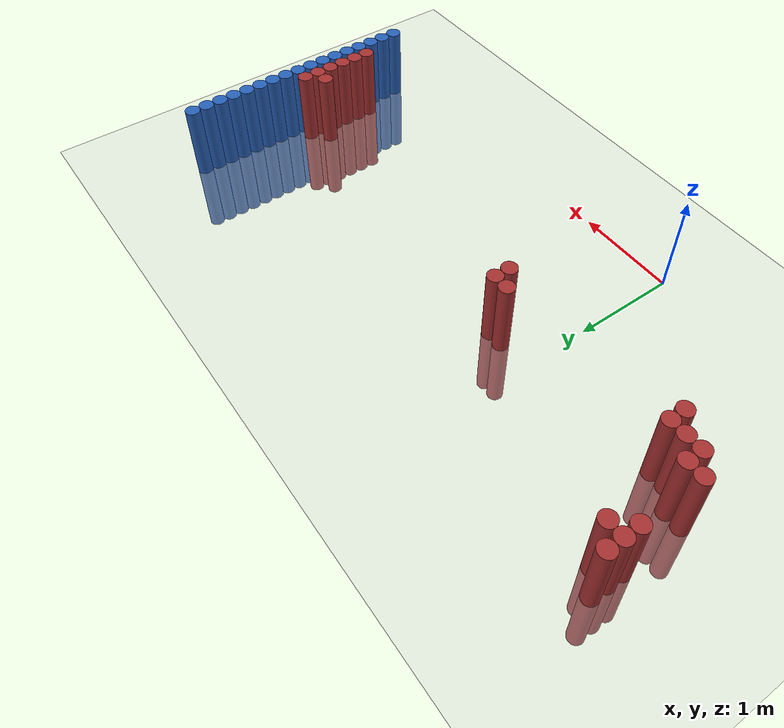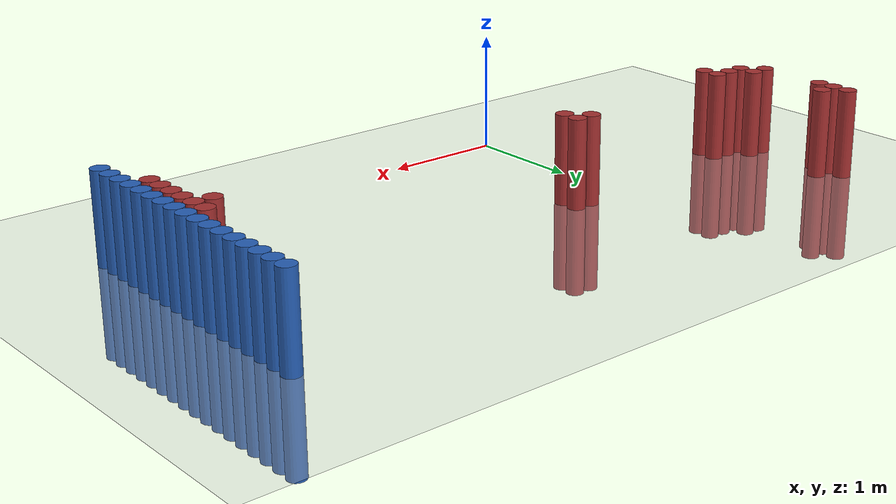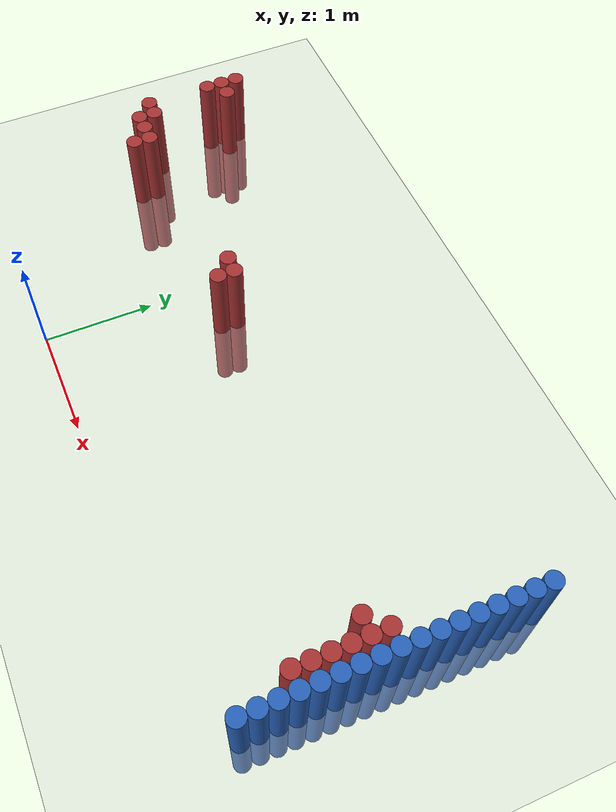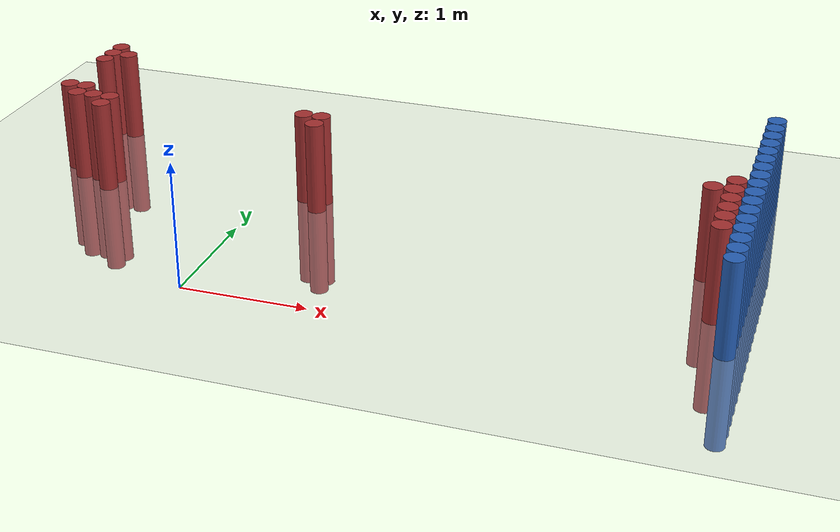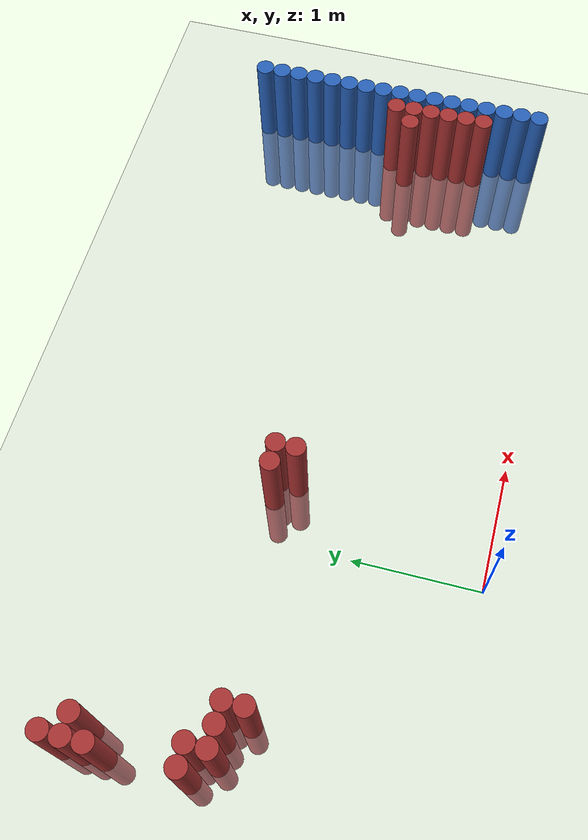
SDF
<sdf version="1.6">
 <world name="default">
  <model name="ground_plane">
   <static>1</static>
   <link name="link">
    <collision name="collision">
     <geometry><plane><normal>0 0 1</normal><size>100 100</size></plane></geometry>
     <surface><friction><ode><mu>100</mu><mu2>50</mu2></ode></friction></surface>
    </collision>
    <visual name="visual">
     <cast_shadows>0</cast_shadows>
     <geometry><plane><normal>0 0 1</normal><size>100 100</size></plane></geometry>
     <material>
      <script><uri>file://media/materials/scripts/gazebo.material</uri><name>Gazebo/Grey</name></script>
     </material>
    </visual>
   </link>
  </model>
  <model name="unit_cylinder_118">
   <static>1</static>
   <pose>3.925000 0.325000 0.000000 0.000000 0.000000 0.000000</pose>
   <link name="link">
    <inertial>
     <mass>1</mass>
     <inertia><ixx>0.145833</ixx><ixy>0</ixy><ixz>0</ixz><iyy>0.145833</iyy><iyz>0</iyz><izz>0.125</izz></inertia>
    </inertial>
    <collision name="collision">
     <geometry><cylinder><radius>0.075000</radius><length>1.5</length></cylinder></geometry>
    </collision>
    <visual name="visual">
     <geometry><cylinder><radius>0.075000</radius><length>1.5</length></cylinder></geometry>
     <material>
      <ambient>0.152000 0.379000 0.720000 1</ambient>
      <diffuse>0.152000 0.379000 0.720000 1</diffuse>
     </material>
     <material>
      <script><name>Gazebo/Grey</name><uri>file://media/materials/scripts/gazebo.material</uri></script>
     </material>
    </visual>
   </link>
  </model>
  <model name="unit_cylinder_120">
   <static>1</static>
   <pose>3.925000 0.475000 0.000000 0.000000 0.000000 0.000000</pose>
   <link name="link">
    <inertial>
     <mass>1</mass>
     <inertia><ixx>0.145833</ixx><ixy>0</ixy><ixz>0</ixz><iyy>0.145833</iyy><iyz>0</iyz><izz>0.125</izz></inertia>
    </inertial>
    <collision name="collision">
     <geometry><cylinder><radius>0.075000</radius><length>1.5</length></cylinder></geometry>
    </collision>
    <visual name="visual">
     <geometry><cylinder><radius>0.075000</radius><length>1.5</length></cylinder></geometry>
     <material>
      <ambient>0.152000 0.379000 0.720000 1</ambient>
      <diffuse>0.152000 0.379000 0.720000 1</diffuse>
     </material>
     <material>
      <script><name>Gazebo/Grey</name><uri>file://media/materials/scripts/gazebo.material</uri></script>
     </material>
    </visual>
   </link>
  </model>
  <model name="unit_cylinder_122">
   <static>1</static>
   <pose>3.925000 0.625000 0.000000 0.000000 0.000000 0.000000</pose>
   <link name="link">
    <inertial>
     <mass>1</mass>
     <inertia><ixx>0.145833</ixx><ixy>0</ixy><ixz>0</ixz><iyy>0.145833</iyy><iyz>0</iyz><izz>0.125</izz></inertia>
    </inertial>
    <collision name="collision">
     <geometry><cylinder><radius>0.075000</radius><length>1.5</length></cylinder></geometry>
    </collision>
    <visual name="visual">
     <geometry><cylinder><radius>0.075000</radius><length>1.5</length></cylinder></geometry>
     <material>
      <ambient>0.152000 0.379000 0.720000 1</ambient>
      <diffuse>0.152000 0.379000 0.720000 1</diffuse>
     </material>
     <material>
      <script><name>Gazebo/Grey</name><uri>file://media/materials/scripts/gazebo.material</uri></script>
     </material>
    </visual>
   </link>
  </model>
  <model name="unit_cylinder_124">
   <static>1</static>
   <pose>3.925000 0.775000 0.000000 0.000000 0.000000 0.000000</pose>
   <link name="link">
    <inertial>
     <mass>1</mass>
     <inertia><ixx>0.145833</ixx><ixy>0</ixy><ixz>0</ixz><iyy>0.145833</iyy><iyz>0</iyz><izz>0.125</izz></inertia>
    </inertial>
    <collision name="collision">
     <geometry><cylinder><radius>0.075000</radius><length>1.5</length></cylinder></geometry>
    </collision>
    <visual name="visual">
     <geometry><cylinder><radius>0.075000</radius><length>1.5</length></cylinder></geometry>
     <material>
      <ambient>0.152000 0.379000 0.720000 1</ambient>
      <diffuse>0.152000 0.379000 0.720000 1</diffuse>
     </material>
     <material>
      <script><name>Gazebo/Grey</name><uri>file://media/materials/scripts/gazebo.material</uri></script>
     </material>
    </visual>
   </link>
  </model>
  <model name="unit_cylinder_126">
   <static>1</static>
   <pose>3.925000 0.925000 0.000000 0.000000 0.000000 0.000000</pose>
   <link name="link">
    <inertial>
     <mass>1</mass>
     <inertia><ixx>0.145833</ixx><ixy>0</ixy><ixz>0</ixz><iyy>0.145833</iyy><iyz>0</iyz><izz>0.125</izz></inertia>
    </inertial>
    <collision name="collision">
     <geometry><cylinder><radius>0.075000</radius><length>1.5</length></cylinder></geometry>
    </collision>
    <visual name="visual">
     <geometry><cylinder><radius>0.075000</radius><length>1.5</length></cylinder></geometry>
     <material>
      <ambient>0.152000 0.379000 0.720000 1</ambient>
      <diffuse>0.152000 0.379000 0.720000 1</diffuse>
     </material>
     <material>
      <script><name>Gazebo/Grey</name><uri>file://media/materials/scripts/gazebo.material</uri></script>
     </material>
    </visual>
   </link>
  </model>
  <model name="unit_cylinder_128">
   <static>1</static>
   <pose>3.925000 1.075000 0.000000 0.000000 0.000000 0.000000</pose>
   <link name="link">
    <inertial>
     <mass>1</mass>
     <inertia><ixx>0.145833</ixx><ixy>0</ixy><ixz>0</ixz><iyy>0.145833</iyy><iyz>0</iyz><izz>0.125</izz></inertia>
    </inertial>
    <collision name="collision">
     <geometry><cylinder><radius>0.075000</radius><length>1.5</length></cylinder></geometry>
    </collision>
    <visual name="visual">
     <geometry><cylinder><radius>0.075000</radius><length>1.5</length></cylinder></geometry>
     <material>
      <ambient>0.152000 0.379000 0.720000 1</ambient>
      <diffuse>0.152000 0.379000 0.720000 1</diffuse>
     </material>
     <material>
      <script><name>Gazebo/Grey</name><uri>file://media/materials/scripts/gazebo.material</uri></script>
     </material>
    </visual>
   </link>
  </model>
  <model name="unit_cylinder_130">
   <static>1</static>
   <pose>3.925000 1.225000 0.000000 0.000000 0.000000 0.000000</pose>
   <link name="link">
    <inertial>
     <mass>1</mass>
     <inertia><ixx>0.145833</ixx><ixy>0</ixy><ixz>0</ixz><iyy>0.145833</iyy><iyz>0</iyz><izz>0.125</izz></inertia>
    </inertial>
    <collision name="collision">
     <geometry><cylinder><radius>0.075000</radius><length>1.5</length></cylinder></geometry>
    </collision>
    <visual name="visual">
     <geometry><cylinder><radius>0.075000</radius><length>1.5</length></cylinder></geometry>
     <material>
      <ambient>0.152000 0.379000 0.720000 1</ambient>
      <diffuse>0.152000 0.379000 0.720000 1</diffuse>
     </material>
     <material>
      <script><name>Gazebo/Grey</name><uri>file://media/materials/scripts/gazebo.material</uri></script>
     </material>
    </visual>
   </link>
  </model>
  <model name="unit_cylinder_132">
   <static>1</static>
   <pose>3.925000 1.375000 0.000000 0.000000 0.000000 0.000000</pose>
   <link name="link">
    <inertial>
     <mass>1</mass>
     <inertia><ixx>0.145833</ixx><ixy>0</ixy><ixz>0</ixz><iyy>0.145833</iyy><iyz>0</iyz><izz>0.125</izz></inertia>
    </inertial>
    <collision name="collision">
     <geometry><cylinder><radius>0.075000</radius><length>1.5</length></cylinder></geometry>
    </collision>
    <visual name="visual">
     <geometry><cylinder><radius>0.075000</radius><length>1.5</length></cylinder></geometry>
     <material>
      <ambient>0.152000 0.379000 0.720000 1</ambient>
      <diffuse>0.152000 0.379000 0.720000 1</diffuse>
     </material>
     <material>
      <script><name>Gazebo/Grey</name><uri>file://media/materials/scripts/gazebo.material</uri></script>
     </material>
    </visual>
   </link>
  </model>
  <model name="unit_cylinder_134">
   <static>1</static>
   <pose>3.925000 1.525000 0.000000 0.000000 0.000000 0.000000</pose>
   <link name="link">
    <inertial>
     <mass>1</mass>
     <inertia><ixx>0.145833</ixx><ixy>0</ixy><ixz>0</ixz><iyy>0.145833</iyy><iyz>0</iyz><izz>0.125</izz></inertia>
    </inertial>
    <collision name="collision">
     <geometry><cylinder><radius>0.075000</radius><length>1.5</length></cylinder></geometry>
    </collision>
    <visual name="visual">
     <geometry><cylinder><radius>0.075000</radius><length>1.5</length></cylinder></geometry>
     <material>
      <ambient>0.152000 0.379000 0.720000 1</ambient>
      <diffuse>0.152000 0.379000 0.720000 1</diffuse>
     </material>
     <material>
      <script><name>Gazebo/Grey</name><uri>file://media/materials/scripts/gazebo.material</uri></script>
     </material>
    </visual>
   </link>
  </model>
  <model name="unit_cylinder_136">
   <static>1</static>
   <pose>3.925000 1.675000 0.000000 0.000000 0.000000 0.000000</pose>
   <link name="link">
    <inertial>
     <mass>1</mass>
     <inertia><ixx>0.145833</ixx><ixy>0</ixy><ixz>0</ixz><iyy>0.145833</iyy><iyz>0</iyz><izz>0.125</izz></inertia>
    </inertial>
    <collision name="collision">
     <geometry><cylinder><radius>0.075000</radius><length>1.5</length></cylinder></geometry>
    </collision>
    <visual name="visual">
     <geometry><cylinder><radius>0.075000</radius><length>1.5</length></cylinder></geometry>
     <material>
      <ambient>0.152000 0.379000 0.720000 1</ambient>
      <diffuse>0.152000 0.379000 0.720000 1</diffuse>
     </material>
     <material>
      <script><name>Gazebo/Grey</name><uri>file://media/materials/scripts/gazebo.material</uri></script>
     </material>
    </visual>
   </link>
  </model>
  <model name="unit_cylinder_138">
   <static>1</static>
   <pose>3.925000 1.825000 0.000000 0.000000 0.000000 0.000000</pose>
   <link name="link">
    <inertial>
     <mass>1</mass>
     <inertia><ixx>0.145833</ixx><ixy>0</ixy><ixz>0</ixz><iyy>0.145833</iyy><iyz>0</iyz><izz>0.125</izz></inertia>
    </inertial>
    <collision name="collision">
     <geometry><cylinder><radius>0.075000</radius><length>1.5</length></cylinder></geometry>
    </collision>
    <visual name="visual">
     <geometry><cylinder><radius>0.075000</radius><length>1.5</length></cylinder></geometry>
     <material>
      <ambient>0.152000 0.379000 0.720000 1</ambient>
      <diffuse>0.152000 0.379000 0.720000 1</diffuse>
     </material>
     <material>
      <script><name>Gazebo/Grey</name><uri>file://media/materials/scripts/gazebo.material</uri></script>
     </material>
    </visual>
   </link>
  </model>
  <model name="unit_cylinder_140">
   <static>1</static>
   <pose>3.925000 1.975000 0.000000 0.000000 0.000000 0.000000</pose>
   <link name="link">
    <inertial>
     <mass>1</mass>
     <inertia><ixx>0.145833</ixx><ixy>0</ixy><ixz>0</ixz><iyy>0.145833</iyy><iyz>0</iyz><izz>0.125</izz></inertia>
    </inertial>
    <collision name="collision">
     <geometry><cylinder><radius>0.075000</radius><length>1.5</length></cylinder></geometry>
    </collision>
    <visual name="visual">
     <geometry><cylinder><radius>0.075000</radius><length>1.5</length></cylinder></geometry>
     <material>
      <ambient>0.152000 0.379000 0.720000 1</ambient>
      <diffuse>0.152000 0.379000 0.720000 1</diffuse>
     </material>
     <material>
      <script><name>Gazebo/Grey</name><uri>file://media/materials/scripts/gazebo.material</uri></script>
     </material>
    </visual>
   </link>
  </model>
  <model name="unit_cylinder_142">
   <static>1</static>
   <pose>3.925000 2.125000 0.000000 0.000000 0.000000 0.000000</pose>
   <link name="link">
    <inertial>
     <mass>1</mass>
     <inertia><ixx>0.145833</ixx><ixy>0</ixy><ixz>0</ixz><iyy>0.145833</iyy><iyz>0</iyz><izz>0.125</izz></inertia>
    </inertial>
    <collision name="collision">
     <geometry><cylinder><radius>0.075000</radius><length>1.5</length></cylinder></geometry>
    </collision>
    <visual name="visual">
     <geometry><cylinder><radius>0.075000</radius><length>1.5</length></cylinder></geometry>
     <material>
      <ambient>0.152000 0.379000 0.720000 1</ambient>
      <diffuse>0.152000 0.379000 0.720000 1</diffuse>
     </material>
     <material>
      <script><name>Gazebo/Grey</name><uri>file://media/materials/scripts/gazebo.material</uri></script>
     </material>
    </visual>
   </link>
  </model>
  <model name="unit_cylinder_144">
   <static>1</static>
   <pose>3.925000 2.275000 0.000000 0.000000 0.000000 0.000000</pose>
   <link name="link">
    <inertial>
     <mass>1</mass>
     <inertia><ixx>0.145833</ixx><ixy>0</ixy><ixz>0</ixz><iyy>0.145833</iyy><iyz>0</iyz><izz>0.125</izz></inertia>
    </inertial>
    <collision name="collision">
     <geometry><cylinder><radius>0.075000</radius><length>1.5</length></cylinder></geometry>
    </collision>
    <visual name="visual">
     <geometry><cylinder><radius>0.075000</radius><length>1.5</length></cylinder></geometry>
     <material>
      <ambient>0.152000 0.379000 0.720000 1</ambient>
      <diffuse>0.152000 0.379000 0.720000 1</diffuse>
     </material>
     <material>
      <script><name>Gazebo/Grey</name><uri>file://media/materials/scripts/gazebo.material</uri></script>
     </material>
    </visual>
   </link>
  </model>
  <model name="unit_cylinder_146">
   <static>1</static>
   <pose>3.925000 2.425000 0.000000 0.000000 0.000000 0.000000</pose>
   <link name="link">
    <inertial>
     <mass>1</mass>
     <inertia><ixx>0.145833</ixx><ixy>0</ixy><ixz>0</ixz><iyy>0.145833</iyy><iyz>0</iyz><izz>0.125</izz></inertia>
    </inertial>
    <collision name="collision">
     <geometry><cylinder><radius>0.075000</radius><length>1.5</length></cylinder></geometry>
    </collision>
    <visual name="visual">
     <geometry><cylinder><radius>0.075000</radius><length>1.5</length></cylinder></geometry>
     <material>
      <ambient>0.152000 0.379000 0.720000 1</ambient>
      <diffuse>0.152000 0.379000 0.720000 1</diffuse>
     </material>
     <material>
      <script><name>Gazebo/Grey</name><uri>file://media/materials/scripts/gazebo.material</uri></script>
     </material>
    </visual>
   </link>
  </model>
  <model name="unit_cylinder_148">
   <static>1</static>
   <pose>3.925000 2.575000 0.000000 0.000000 0.000000 0.000000</pose>
   <link name="link">
    <inertial>
     <mass>1</mass>
     <inertia><ixx>0.145833</ixx><ixy>0</ixy><ixz>0</ixz><iyy>0.145833</iyy><iyz>0</iyz><izz>0.125</izz></inertia>
    </inertial>
    <collision name="collision">
     <geometry><cylinder><radius>0.075000</radius><length>1.5</length></cylinder></geometry>
    </collision>
    <visual name="visual">
     <geometry><cylinder><radius>0.075000</radius><length>1.5</length></cylinder></geometry>
     <material>
      <ambient>0.152000 0.379000 0.720000 1</ambient>
      <diffuse>0.152000 0.379000 0.720000 1</diffuse>
     </material>
     <material>
      <script><name>Gazebo/Grey</name><uri>file://media/materials/scripts/gazebo.material</uri></script>
     </material>
    </visual>
   </link>
  </model>
  <model name="unit_cylinder_150">
   <static>1</static>
   <pose>3.925000 2.725000 0.000000 0.000000 0.000000 0.000000</pose>
   <link name="link">
    <inertial>
     <mass>1</mass>
     <inertia><ixx>0.145833</ixx><ixy>0</ixy><ixz>0</ixz><iyy>0.145833</iyy><iyz>0</iyz><izz>0.125</izz></inertia>
    </inertial>
    <collision name="collision">
     <geometry><cylinder><radius>0.075000</radius><length>1.5</length></cylinder></geometry>
    </collision>
    <visual name="visual">
     <geometry><cylinder><radius>0.075000</radius><length>1.5</length></cylinder></geometry>
     <material>
      <ambient>0.152000 0.379000 0.720000 1</ambient>
      <diffuse>0.152000 0.379000 0.720000 1</diffuse>
     </material>
     <material>
      <script><name>Gazebo/Grey</name><uri>file://media/materials/scripts/gazebo.material</uri></script>
     </material>
    </visual>
   </link>
  </model>
  <model name="unit_cylinder_300">
   <static>1</static>
   <pose>-1.775000 1.675000 0.000000 0.000000 0.000000 0.000000</pose>
   <link name="link">
    <inertial>
     <mass>1</mass>
     <inertia><ixx>0.145833</ixx><ixy>0</ixy><ixz>0</ixz><iyy>0.145833</iyy><iyz>0</iyz><izz>0.125</izz></inertia>
    </inertial>
    <collision name="collision">
     <geometry><cylinder><radius>0.075000</radius><length>1.5</length></cylinder></geometry>
    </collision>
    <visual name="visual">
     <geometry><cylinder><radius>0.075000</radius><length>1.5</length></cylinder></geometry>
     <material>
      <ambient>0.648000 0.192000 0.192000 1</ambient>
      <diffuse>0.648000 0.192000 0.192000 1</diffuse>
     </material>
     <material>
      <script><name>Gazebo/Grey</name><uri>file://media/materials/scripts/gazebo.material</uri></script>
     </material>
    </visual>
   </link>
  </model>
  <model name="unit_cylinder_301">
   <static>1</static>
   <pose>-1.775000 2.275000 0.000000 0.000000 0.000000 0.000000</pose>
   <link name="link">
    <inertial>
     <mass>1</mass>
     <inertia><ixx>0.145833</ixx><ixy>0</ixy><ixz>0</ixz><iyy>0.145833</iyy><iyz>0</iyz><izz>0.125</izz></inertia>
    </inertial>
    <collision name="collision">
     <geometry><cylinder><radius>0.075000</radius><length>1.5</length></cylinder></geometry>
    </collision>
    <visual name="visual">
     <geometry><cylinder><radius>0.075000</radius><length>1.5</length></cylinder></geometry>
     <material>
      <ambient>0.648000 0.192000 0.192000 1</ambient>
      <diffuse>0.648000 0.192000 0.192000 1</diffuse>
     </material>
     <material>
      <script><name>Gazebo/Grey</name><uri>file://media/materials/scripts/gazebo.material</uri></script>
     </material>
    </visual>
   </link>
  </model>
  <model name="unit_cylinder_302">
   <static>1</static>
   <pose>-1.775000 2.425000 0.000000 0.000000 0.000000 0.000000</pose>
   <link name="link">
    <inertial>
     <mass>1</mass>
     <inertia><ixx>0.145833</ixx><ixy>0</ixy><ixz>0</ixz><iyy>0.145833</iyy><iyz>0</iyz><izz>0.125</izz></inertia>
    </inertial>
    <collision name="collision">
     <geometry><cylinder><radius>0.075000</radius><length>1.5</length></cylinder></geometry>
    </collision>
    <visual name="visual">
     <geometry><cylinder><radius>0.075000</radius><length>1.5</length></cylinder></geometry>
     <material>
      <ambient>0.648000 0.192000 0.192000 1</ambient>
      <diffuse>0.648000 0.192000 0.192000 1</diffuse>
     </material>
     <material>
      <script><name>Gazebo/Grey</name><uri>file://media/materials/scripts/gazebo.material</uri></script>
     </material>
    </visual>
   </link>
  </model>
  <model name="unit_cylinder_303">
   <static>1</static>
   <pose>-1.775000 2.575000 0.000000 0.000000 0.000000 0.000000</pose>
   <link name="link">
    <inertial>
     <mass>1</mass>
     <inertia><ixx>0.145833</ixx><ixy>0</ixy><ixz>0</ixz><iyy>0.145833</iyy><iyz>0</iyz><izz>0.125</izz></inertia>
    </inertial>
    <collision name="collision">
     <geometry><cylinder><radius>0.075000</radius><length>1.5</length></cylinder></geometry>
    </collision>
    <visual name="visual">
     <geometry><cylinder><radius>0.075000</radius><length>1.5</length></cylinder></geometry>
     <material>
      <ambient>0.648000 0.192000 0.192000 1</ambient>
      <diffuse>0.648000 0.192000 0.192000 1</diffuse>
     </material>
     <material>
      <script><name>Gazebo/Grey</name><uri>file://media/materials/scripts/gazebo.material</uri></script>
     </material>
    </visual>
   </link>
  </model>
  <model name="unit_cylinder_307">
   <static>1</static>
   <pose>-1.625000 1.525000 0.000000 0.000000 0.000000 0.000000</pose>
   <link name="link">
    <inertial>
     <mass>1</mass>
     <inertia><ixx>0.145833</ixx><ixy>0</ixy><ixz>0</ixz><iyy>0.145833</iyy><iyz>0</iyz><izz>0.125</izz></inertia>
    </inertial>
    <collision name="collision">
     <geometry><cylinder><radius>0.075000</radius><length>1.5</length></cylinder></geometry>
    </collision>
    <visual name="visual">
     <geometry><cylinder><radius>0.075000</radius><length>1.5</length></cylinder></geometry>
     <material>
      <ambient>0.648000 0.192000 0.192000 1</ambient>
      <diffuse>0.648000 0.192000 0.192000 1</diffuse>
     </material>
     <material>
      <script><name>Gazebo/Grey</name><uri>file://media/materials/scripts/gazebo.material</uri></script>
     </material>
    </visual>
   </link>
  </model>
  <model name="unit_cylinder_308">
   <static>1</static>
   <pose>-1.625000 1.675000 0.000000 0.000000 0.000000 0.000000</pose>
   <link name="link">
    <inertial>
     <mass>1</mass>
     <inertia><ixx>0.145833</ixx><ixy>0</ixy><ixz>0</ixz><iyy>0.145833</iyy><iyz>0</iyz><izz>0.125</izz></inertia>
    </inertial>
    <collision name="collision">
     <geometry><cylinder><radius>0.075000</radius><length>1.5</length></cylinder></geometry>
    </collision>
    <visual name="visual">
     <geometry><cylinder><radius>0.075000</radius><length>1.5</length></cylinder></geometry>
     <material>
      <ambient>0.648000 0.192000 0.192000 1</ambient>
      <diffuse>0.648000 0.192000 0.192000 1</diffuse>
     </material>
     <material>
      <script><name>Gazebo/Grey</name><uri>file://media/materials/scripts/gazebo.material</uri></script>
     </material>
    </visual>
   </link>
  </model>
  <model name="unit_cylinder_309">
   <static>1</static>
   <pose>-1.625000 2.425000 0.000000 0.000000 0.000000 0.000000</pose>
   <link name="link">
    <inertial>
     <mass>1</mass>
     <inertia><ixx>0.145833</ixx><ixy>0</ixy><ixz>0</ixz><iyy>0.145833</iyy><iyz>0</iyz><izz>0.125</izz></inertia>
    </inertial>
    <collision name="collision">
     <geometry><cylinder><radius>0.075000</radius><length>1.5</length></cylinder></geometry>
    </collision>
    <visual name="visual">
     <geometry><cylinder><radius>0.075000</radius><length>1.5</length></cylinder></geometry>
     <material>
      <ambient>0.648000 0.192000 0.192000 1</ambient>
      <diffuse>0.648000 0.192000 0.192000 1</diffuse>
     </material>
     <material>
      <script><name>Gazebo/Grey</name><uri>file://media/materials/scripts/gazebo.material</uri></script>
     </material>
    </visual>
   </link>
  </model>
  <model name="unit_cylinder_315">
   <static>1</static>
   <pose>-1.475000 1.525000 0.000000 0.000000 0.000000 0.000000</pose>
   <link name="link">
    <inertial>
     <mass>1</mass>
     <inertia><ixx>0.145833</ixx><ixy>0</ixy><ixz>0</ixz><iyy>0.145833</iyy><iyz>0</iyz><izz>0.125</izz></inertia>
    </inertial>
    <collision name="collision">
     <geometry><cylinder><radius>0.075000</radius><length>1.5</length></cylinder></geometry>
    </collision>
    <visual name="visual">
     <geometry><cylinder><radius>0.075000</radius><length>1.5</length></cylinder></geometry>
     <material>
      <ambient>0.648000 0.192000 0.192000 1</ambient>
      <diffuse>0.648000 0.192000 0.192000 1</diffuse>
     </material>
     <material>
      <script><name>Gazebo/Grey</name><uri>file://media/materials/scripts/gazebo.material</uri></script>
     </material>
    </visual>
   </link>
  </model>
  <model name="unit_cylinder_319">
   <static>1</static>
   <pose>-1.325000 1.375000 0.000000 0.000000 0.000000 0.000000</pose>
   <link name="link">
    <inertial>
     <mass>1</mass>
     <inertia><ixx>0.145833</ixx><ixy>0</ixy><ixz>0</ixz><iyy>0.145833</iyy><iyz>0</iyz><izz>0.125</izz></inertia>
    </inertial>
    <collision name="collision">
     <geometry><cylinder><radius>0.075000</radius><length>1.5</length></cylinder></geometry>
    </collision>
    <visual name="visual">
     <geometry><cylinder><radius>0.075000</radius><length>1.5</length></cylinder></geometry>
     <material>
      <ambient>0.648000 0.192000 0.192000 1</ambient>
      <diffuse>0.648000 0.192000 0.192000 1</diffuse>
     </material>
     <material>
      <script><name>Gazebo/Grey</name><uri>file://media/materials/scripts/gazebo.material</uri></script>
     </material>
    </visual>
   </link>
  </model>
  <model name="unit_cylinder_320">
   <static>1</static>
   <pose>-1.325000 1.525000 0.000000 0.000000 0.000000 0.000000</pose>
   <link name="link">
    <inertial>
     <mass>1</mass>
     <inertia><ixx>0.145833</ixx><ixy>0</ixy><ixz>0</ixz><iyy>0.145833</iyy><iyz>0</iyz><izz>0.125</izz></inertia>
    </inertial>
    <collision name="collision">
     <geometry><cylinder><radius>0.075000</radius><length>1.5</length></cylinder></geometry>
    </collision>
    <visual name="visual">
     <geometry><cylinder><radius>0.075000</radius><length>1.5</length></cylinder></geometry>
     <material>
      <ambient>0.648000 0.192000 0.192000 1</ambient>
      <diffuse>0.648000 0.192000 0.192000 1</diffuse>
     </material>
     <material>
      <script><name>Gazebo/Grey</name><uri>file://media/materials/scripts/gazebo.material</uri></script>
     </material>
    </visual>
   </link>
  </model>
  <model name="unit_cylinder_344">
   <static>1</static>
   <pose>0.325000 1.675000 0.000000 0.000000 0.000000 0.000000</pose>
   <link name="link">
    <inertial>
     <mass>1</mass>
     <inertia><ixx>0.145833</ixx><ixy>0</ixy><ixz>0</ixz><iyy>0.145833</iyy><iyz>0</iyz><izz>0.125</izz></inertia>
    </inertial>
    <collision name="collision">
     <geometry><cylinder><radius>0.075000</radius><length>1.5</length></cylinder></geometry>
    </collision>
    <visual name="visual">
     <geometry><cylinder><radius>0.075000</radius><length>1.5</length></cylinder></geometry>
     <material>
      <ambient>0.648000 0.192000 0.192000 1</ambient>
      <diffuse>0.648000 0.192000 0.192000 1</diffuse>
     </material>
     <material>
      <script><name>Gazebo/Grey</name><uri>file://media/materials/scripts/gazebo.material</uri></script>
     </material>
    </visual>
   </link>
  </model>
  <model name="unit_cylinder_345">
   <static>1</static>
   <pose>0.475000 1.525000 0.000000 0.000000 0.000000 0.000000</pose>
   <link name="link">
    <inertial>
     <mass>1</mass>
     <inertia><ixx>0.145833</ixx><ixy>0</ixy><ixz>0</ixz><iyy>0.145833</iyy><iyz>0</iyz><izz>0.125</izz></inertia>
    </inertial>
    <collision name="collision">
     <geometry><cylinder><radius>0.075000</radius><length>1.5</length></cylinder></geometry>
    </collision>
    <visual name="visual">
     <geometry><cylinder><radius>0.075000</radius><length>1.5</length></cylinder></geometry>
     <material>
      <ambient>0.648000 0.192000 0.192000 1</ambient>
      <diffuse>0.648000 0.192000 0.192000 1</diffuse>
     </material>
     <material>
      <script><name>Gazebo/Grey</name><uri>file://media/materials/scripts/gazebo.material</uri></script>
     </material>
    </visual>
   </link>
  </model>
  <model name="unit_cylinder_346">
   <static>1</static>
   <pose>0.475000 1.675000 0.000000 0.000000 0.000000 0.000000</pose>
   <link name="link">
    <inertial>
     <mass>1</mass>
     <inertia><ixx>0.145833</ixx><ixy>0</ixy><ixz>0</ixz><iyy>0.145833</iyy><iyz>0</iyz><izz>0.125</izz></inertia>
    </inertial>
    <collision name="collision">
     <geometry><cylinder><radius>0.075000</radius><length>1.5</length></cylinder></geometry>
    </collision>
    <visual name="visual">
     <geometry><cylinder><radius>0.075000</radius><length>1.5</length></cylinder></geometry>
     <material>
      <ambient>0.648000 0.192000 0.192000 1</ambient>
      <diffuse>0.648000 0.192000 0.192000 1</diffuse>
     </material>
     <material>
      <script><name>Gazebo/Grey</name><uri>file://media/materials/scripts/gazebo.material</uri></script>
     </material>
    </visual>
   </link>
  </model>
  <model name="unit_cylinder_404">
   <static>1</static>
   <pose>3.625000 1.375000 0.000000 0.000000 0.000000 0.000000</pose>
   <link name="link">
    <inertial>
     <mass>1</mass>
     <inertia><ixx>0.145833</ixx><ixy>0</ixy><ixz>0</ixz><iyy>0.145833</iyy><iyz>0</iyz><izz>0.125</izz></inertia>
    </inertial>
    <collision name="collision">
     <geometry><cylinder><radius>0.075000</radius><length>1.5</length></cylinder></geometry>
    </collision>
    <visual name="visual">
     <geometry><cylinder><radius>0.075000</radius><length>1.5</length></cylinder></geometry>
     <material>
      <ambient>0.648000 0.192000 0.192000 1</ambient>
      <diffuse>0.648000 0.192000 0.192000 1</diffuse>
     </material>
     <material>
      <script><name>Gazebo/Grey</name><uri>file://media/materials/scripts/gazebo.material</uri></script>
     </material>
    </visual>
   </link>
  </model>
  <model name="unit_cylinder_411">
   <static>1</static>
   <pose>3.775000 0.775000 0.000000 0.000000 0.000000 0.000000</pose>
   <link name="link">
    <inertial>
     <mass>1</mass>
     <inertia><ixx>0.145833</ixx><ixy>0</ixy><ixz>0</ixz><iyy>0.145833</iyy><iyz>0</iyz><izz>0.125</izz></inertia>
    </inertial>
    <collision name="collision">
     <geometry><cylinder><radius>0.075000</radius><length>1.5</length></cylinder></geometry>
    </collision>
    <visual name="visual">
     <geometry><cylinder><radius>0.075000</radius><length>1.5</length></cylinder></geometry>
     <material>
      <ambient>0.648000 0.192000 0.192000 1</ambient>
      <diffuse>0.648000 0.192000 0.192000 1</diffuse>
     </material>
     <material>
      <script><name>Gazebo/Grey</name><uri>file://media/materials/scripts/gazebo.material</uri></script>
     </material>
    </visual>
   </link>
  </model>
  <model name="unit_cylinder_412">
   <static>1</static>
   <pose>3.775000 0.925000 0.000000 0.000000 0.000000 0.000000</pose>
   <link name="link">
    <inertial>
     <mass>1</mass>
     <inertia><ixx>0.145833</ixx><ixy>0</ixy><ixz>0</ixz><iyy>0.145833</iyy><iyz>0</iyz><izz>0.125</izz></inertia>
    </inertial>
    <collision name="collision">
     <geometry><cylinder><radius>0.075000</radius><length>1.5</length></cylinder></geometry>
    </collision>
    <visual name="visual">
     <geometry><cylinder><radius>0.075000</radius><length>1.5</length></cylinder></geometry>
     <material>
      <ambient>0.648000 0.192000 0.192000 1</ambient>
      <diffuse>0.648000 0.192000 0.192000 1</diffuse>
     </material>
     <material>
      <script><name>Gazebo/Grey</name><uri>file://media/materials/scripts/gazebo.material</uri></script>
     </material>
    </visual>
   </link>
  </model>
  <model name="unit_cylinder_413">
   <static>1</static>
   <pose>3.775000 1.075000 0.000000 0.000000 0.000000 0.000000</pose>
   <link name="link">
    <inertial>
     <mass>1</mass>
     <inertia><ixx>0.145833</ixx><ixy>0</ixy><ixz>0</ixz><iyy>0.145833</iyy><iyz>0</iyz><izz>0.125</izz></inertia>
    </inertial>
    <collision name="collision">
     <geometry><cylinder><radius>0.075000</radius><length>1.5</length></cylinder></geometry>
    </collision>
    <visual name="visual">
     <geometry><cylinder><radius>0.075000</radius><length>1.5</length></cylinder></geometry>
     <material>
      <ambient>0.648000 0.192000 0.192000 1</ambient>
      <diffuse>0.648000 0.192000 0.192000 1</diffuse>
     </material>
     <material>
      <script><name>Gazebo/Grey</name><uri>file://media/materials/scripts/gazebo.material</uri></script>
     </material>
    </visual>
   </link>
  </model>
  <model name="unit_cylinder_414">
   <static>1</static>
   <pose>3.775000 1.225000 0.000000 0.000000 0.000000 0.000000</pose>
   <link name="link">
    <inertial>
     <mass>1</mass>
     <inertia><ixx>0.145833</ixx><ixy>0</ixy><ixz>0</ixz><iyy>0.145833</iyy><iyz>0</iyz><izz>0.125</izz></inertia>
    </inertial>
    <collision name="collision">
     <geometry><cylinder><radius>0.075000</radius><length>1.5</length></cylinder></geometry>
    </collision>
    <visual name="visual">
     <geometry><cylinder><radius>0.075000</radius><length>1.5</length></cylinder></geometry>
     <material>
      <ambient>0.648000 0.192000 0.192000 1</ambient>
      <diffuse>0.648000 0.192000 0.192000 1</diffuse>
     </material>
     <material>
      <script><name>Gazebo/Grey</name><uri>file://media/materials/scripts/gazebo.material</uri></script>
     </material>
    </visual>
   </link>
  </model>
  <model name="unit_cylinder_415">
   <static>1</static>
   <pose>3.775000 1.375000 0.000000 0.000000 0.000000 0.000000</pose>
   <link name="link">
    <inertial>
     <mass>1</mass>
     <inertia><ixx>0.145833</ixx><ixy>0</ixy><ixz>0</ixz><iyy>0.145833</iyy><iyz>0</iyz><izz>0.125</izz></inertia>
    </inertial>
    <collision name="collision">
     <geometry><cylinder><radius>0.075000</radius><length>1.5</length></cylinder></geometry>
    </collision>
    <visual name="visual">
     <geometry><cylinder><radius>0.075000</radius><length>1.5</length></cylinder></geometry>
     <material>
      <ambient>0.648000 0.192000 0.192000 1</ambient>
      <diffuse>0.648000 0.192000 0.192000 1</diffuse>
     </material>
     <material>
      <script><name>Gazebo/Grey</name><uri>file://media/materials/scripts/gazebo.material</uri></script>
     </material>
    </visual>
   </link>
  </model>
  <model name="unit_cylinder_416">
   <static>1</static>
   <pose>3.775000 1.525000 0.000000 0.000000 0.000000 0.000000</pose>
   <link name="link">
    <inertial>
     <mass>1</mass>
     <inertia><ixx>0.145833</ixx><ixy>0</ixy><ixz>0</ixz><iyy>0.145833</iyy><iyz>0</iyz><izz>0.125</izz></inertia>
    </inertial>
    <collision name="collision">
     <geometry><cylinder><radius>0.075000</radius><length>1.5</length></cylinder></geometry>
    </collision>
    <visual name="visual">
     <geometry><cylinder><radius>0.075000</radius><length>1.5</length></cylinder></geometry>
     <material>
      <ambient>0.648000 0.192000 0.192000 1</ambient>
      <diffuse>0.648000 0.192000 0.192000 1</diffuse>
     </material>
     <material>
      <script><name>Gazebo/Grey</name><uri>file://media/materials/scripts/gazebo.material</uri></script>
     </material>
    </visual>
   </link>
  </model>
  <model name="unit_cylinder_441">
   <static>1</static>
   <pose>3.925000 0.325000 0.000000 0.000000 0.000000 0.000000</pose>
   <link name="link">
    <inertial>
     <mass>1</mass>
     <inertia><ixx>0.145833</ixx><ixy>0</ixy><ixz>0</ixz><iyy>0.145833</iyy><iyz>0</iyz><izz>0.125</izz></inertia>
    </inertial>
    <collision name="collision">
     <geometry><cylinder><radius>0.075000</radius><length>1.5</length></cylinder></geometry>
    </collision>
    <visual name="visual">
     <geometry><cylinder><radius>0.075000</radius><length>1.5</length></cylinder></geometry>
     <material>
      <ambient>0.152000 0.379000 0.720000 1</ambient>
      <diffuse>0.152000 0.379000 0.720000 1</diffuse>
     </material>
     <material>
      <script><name>Gazebo/Grey</name><uri>file://media/materials/scripts/gazebo.material</uri></script>
     </material>
    </visual>
   </link>
  </model>
  <model name="unit_cylinder_442">
   <static>1</static>
   <pose>3.925000 0.475000 0.000000 0.000000 0.000000 0.000000</pose>
   <link name="link">
    <inertial>
     <mass>1</mass>
     <inertia><ixx>0.145833</ixx><ixy>0</ixy><ixz>0</ixz><iyy>0.145833</iyy><iyz>0</iyz><izz>0.125</izz></inertia>
    </inertial>
    <collision name="collision">
     <geometry><cylinder><radius>0.075000</radius><length>1.5</length></cylinder></geometry>
    </collision>
    <visual name="visual">
     <geometry><cylinder><radius>0.075000</radius><length>1.5</length></cylinder></geometry>
     <material>
      <ambient>0.152000 0.379000 0.720000 1</ambient>
      <diffuse>0.152000 0.379000 0.720000 1</diffuse>
     </material>
     <material>
      <script><name>Gazebo/Grey</name><uri>file://media/materials/scripts/gazebo.material</uri></script>
     </material>
    </visual>
   </link>
  </model>
  <model name="unit_cylinder_443">
   <static>1</static>
   <pose>3.925000 0.625000 0.000000 0.000000 0.000000 0.000000</pose>
   <link name="link">
    <inertial>
     <mass>1</mass>
     <inertia><ixx>0.145833</ixx><ixy>0</ixy><ixz>0</ixz><iyy>0.145833</iyy><iyz>0</iyz><izz>0.125</izz></inertia>
    </inertial>
    <collision name="collision">
     <geometry><cylinder><radius>0.075000</radius><length>1.5</length></cylinder></geometry>
    </collision>
    <visual name="visual">
     <geometry><cylinder><radius>0.075000</radius><length>1.5</length></cylinder></geometry>
     <material>
      <ambient>0.152000 0.379000 0.720000 1</ambient>
      <diffuse>0.152000 0.379000 0.720000 1</diffuse>
     </material>
     <material>
      <script><name>Gazebo/Grey</name><uri>file://media/materials/scripts/gazebo.material</uri></script>
     </material>
    </visual>
   </link>
  </model>
  <model name="unit_cylinder_444">
   <static>1</static>
   <pose>3.925000 0.775000 0.000000 0.000000 0.000000 0.000000</pose>
   <link name="link">
    <inertial>
     <mass>1</mass>
     <inertia><ixx>0.145833</ixx><ixy>0</ixy><ixz>0</ixz><iyy>0.145833</iyy><iyz>0</iyz><izz>0.125</izz></inertia>
    </inertial>
    <collision name="collision">
     <geometry><cylinder><radius>0.075000</radius><length>1.5</length></cylinder></geometry>
    </collision>
    <visual name="visual">
     <geometry><cylinder><radius>0.075000</radius><length>1.5</length></cylinder></geometry>
     <material>
      <ambient>0.152000 0.379000 0.720000 1</ambient>
      <diffuse>0.152000 0.379000 0.720000 1</diffuse>
     </material>
     <material>
      <script><name>Gazebo/Grey</name><uri>file://media/materials/scripts/gazebo.material</uri></script>
     </material>
    </visual>
   </link>
  </model>
  <model name="unit_cylinder_445">
   <static>1</static>
   <pose>3.925000 0.925000 0.000000 0.000000 0.000000 0.000000</pose>
   <link name="link">
    <inertial>
     <mass>1</mass>
     <inertia><ixx>0.145833</ixx><ixy>0</ixy><ixz>0</ixz><iyy>0.145833</iyy><iyz>0</iyz><izz>0.125</izz></inertia>
    </inertial>
    <collision name="collision">
     <geometry><cylinder><radius>0.075000</radius><length>1.5</length></cylinder></geometry>
    </collision>
    <visual name="visual">
     <geometry><cylinder><radius>0.075000</radius><length>1.5</length></cylinder></geometry>
     <material>
      <ambient>0.152000 0.379000 0.720000 1</ambient>
      <diffuse>0.152000 0.379000 0.720000 1</diffuse>
     </material>
     <material>
      <script><name>Gazebo/Grey</name><uri>file://media/materials/scripts/gazebo.material</uri></script>
     </material>
    </visual>
   </link>
  </model>
  <model name="unit_cylinder_446">
   <static>1</static>
   <pose>3.925000 1.075000 0.000000 0.000000 0.000000 0.000000</pose>
   <link name="link">
    <inertial>
     <mass>1</mass>
     <inertia><ixx>0.145833</ixx><ixy>0</ixy><ixz>0</ixz><iyy>0.145833</iyy><iyz>0</iyz><izz>0.125</izz></inertia>
    </inertial>
    <collision name="collision">
     <geometry><cylinder><radius>0.075000</radius><length>1.5</length></cylinder></geometry>
    </collision>
    <visual name="visual">
     <geometry><cylinder><radius>0.075000</radius><length>1.5</length></cylinder></geometry>
     <material>
      <ambient>0.152000 0.379000 0.720000 1</ambient>
      <diffuse>0.152000 0.379000 0.720000 1</diffuse>
     </material>
     <material>
      <script><name>Gazebo/Grey</name><uri>file://media/materials/scripts/gazebo.material</uri></script>
     </material>
    </visual>
   </link>
  </model>
  <model name="unit_cylinder_447">
   <static>1</static>
   <pose>3.925000 1.225000 0.000000 0.000000 0.000000 0.000000</pose>
   <link name="link">
    <inertial>
     <mass>1</mass>
     <inertia><ixx>0.145833</ixx><ixy>0</ixy><ixz>0</ixz><iyy>0.145833</iyy><iyz>0</iyz><izz>0.125</izz></inertia>
    </inertial>
    <collision name="collision">
     <geometry><cylinder><radius>0.075000</radius><length>1.5</length></cylinder></geometry>
    </collision>
    <visual name="visual">
     <geometry><cylinder><radius>0.075000</radius><length>1.5</length></cylinder></geometry>
     <material>
      <ambient>0.152000 0.379000 0.720000 1</ambient>
      <diffuse>0.152000 0.379000 0.720000 1</diffuse>
     </material>
     <material>
      <script><name>Gazebo/Grey</name><uri>file://media/materials/scripts/gazebo.material</uri></script>
     </material>
    </visual>
   </link>
  </model>
  <model name="unit_cylinder_448">
   <static>1</static>
   <pose>3.925000 1.375000 0.000000 0.000000 0.000000 0.000000</pose>
   <link name="link">
    <inertial>
     <mass>1</mass>
     <inertia><ixx>0.145833</ixx><ixy>0</ixy><ixz>0</ixz><iyy>0.145833</iyy><iyz>0</iyz><izz>0.125</izz></inertia>
    </inertial>
    <collision name="collision">
     <geometry><cylinder><radius>0.075000</radius><length>1.5</length></cylinder></geometry>
    </collision>
    <visual name="visual">
     <geometry><cylinder><radius>0.075000</radius><length>1.5</length></cylinder></geometry>
     <material>
      <ambient>0.152000 0.379000 0.720000 1</ambient>
      <diffuse>0.152000 0.379000 0.720000 1</diffuse>
     </material>
     <material>
      <script><name>Gazebo/Grey</name><uri>file://media/materials/scripts/gazebo.material</uri></script>
     </material>
    </visual>
   </link>
  </model>
  <model name="unit_cylinder_449">
   <static>1</static>
   <pose>3.925000 1.525000 0.000000 0.000000 0.000000 0.000000</pose>
   <link name="link">
    <inertial>
     <mass>1</mass>
     <inertia><ixx>0.145833</ixx><ixy>0</ixy><ixz>0</ixz><iyy>0.145833</iyy><iyz>0</iyz><izz>0.125</izz></inertia>
    </inertial>
    <collision name="collision">
     <geometry><cylinder><radius>0.075000</radius><length>1.5</length></cylinder></geometry>
    </collision>
    <visual name="visual">
     <geometry><cylinder><radius>0.075000</radius><length>1.5</length></cylinder></geometry>
     <material>
      <ambient>0.152000 0.379000 0.720000 1</ambient>
      <diffuse>0.152000 0.379000 0.720000 1</diffuse>
     </material>
     <material>
      <script><name>Gazebo/Grey</name><uri>file://media/materials/scripts/gazebo.material</uri></script>
     </material>
    </visual>
   </link>
  </model>
  <model name="unit_cylinder_450">
   <static>1</static>
   <pose>3.925000 1.675000 0.000000 0.000000 0.000000 0.000000</pose>
   <link name="link">
    <inertial>
     <mass>1</mass>
     <inertia><ixx>0.145833</ixx><ixy>0</ixy><ixz>0</ixz><iyy>0.145833</iyy><iyz>0</iyz><izz>0.125</izz></inertia>
    </inertial>
    <collision name="collision">
     <geometry><cylinder><radius>0.075000</radius><length>1.5</length></cylinder></geometry>
    </collision>
    <visual name="visual">
     <geometry><cylinder><radius>0.075000</radius><length>1.5</length></cylinder></geometry>
     <material>
      <ambient>0.152000 0.379000 0.720000 1</ambient>
      <diffuse>0.152000 0.379000 0.720000 1</diffuse>
     </material>
     <material>
      <script><name>Gazebo/Grey</name><uri>file://media/materials/scripts/gazebo.material</uri></script>
     </material>
    </visual>
   </link>
  </model>
  <model name="unit_cylinder_451">
   <static>1</static>
   <pose>3.925000 1.825000 0.000000 0.000000 0.000000 0.000000</pose>
   <link name="link">
    <inertial>
     <mass>1</mass>
     <inertia><ixx>0.145833</ixx><ixy>0</ixy><ixz>0</ixz><iyy>0.145833</iyy><iyz>0</iyz><izz>0.125</izz></inertia>
    </inertial>
    <collision name="collision">
     <geometry><cylinder><radius>0.075000</radius><length>1.5</length></cylinder></geometry>
    </collision>
    <visual name="visual">
     <geometry><cylinder><radius>0.075000</radius><length>1.5</length></cylinder></geometry>
     <material>
      <ambient>0.152000 0.379000 0.720000 1</ambient>
      <diffuse>0.152000 0.379000 0.720000 1</diffuse>
     </material>
     <material>
      <script><name>Gazebo/Grey</name><uri>file://media/materials/scripts/gazebo.material</uri></script>
     </material>
    </visual>
   </link>
  </model>
  <model name="unit_cylinder_452">
   <static>1</static>
   <pose>3.925000 1.975000 0.000000 0.000000 0.000000 0.000000</pose>
   <link name="link">
    <inertial>
     <mass>1</mass>
     <inertia><ixx>0.145833</ixx><ixy>0</ixy><ixz>0</ixz><iyy>0.145833</iyy><iyz>0</iyz><izz>0.125</izz></inertia>
    </inertial>
    <collision name="collision">
     <geometry><cylinder><radius>0.075000</radius><length>1.5</length></cylinder></geometry>
    </collision>
    <visual name="visual">
     <geometry><cylinder><radius>0.075000</radius><length>1.5</length></cylinder></geometry>
     <material>
      <ambient>0.152000 0.379000 0.720000 1</ambient>
      <diffuse>0.152000 0.379000 0.720000 1</diffuse>
     </material>
     <material>
      <script><name>Gazebo/Grey</name><uri>file://media/materials/scripts/gazebo.material</uri></script>
     </material>
    </visual>
   </link>
  </model>
  <model name="unit_cylinder_453">
   <static>1</static>
   <pose>3.925000 2.125000 0.000000 0.000000 0.000000 0.000000</pose>
   <link name="link">
    <inertial>
     <mass>1</mass>
     <inertia><ixx>0.145833</ixx><ixy>0</ixy><ixz>0</ixz><iyy>0.145833</iyy><iyz>0</iyz><izz>0.125</izz></inertia>
    </inertial>
    <collision name="collision">
     <geometry><cylinder><radius>0.075000</radius><length>1.5</length></cylinder></geometry>
    </collision>
    <visual name="visual">
     <geometry><cylinder><radius>0.075000</radius><length>1.5</length></cylinder></geometry>
     <material>
      <ambient>0.152000 0.379000 0.720000 1</ambient>
      <diffuse>0.152000 0.379000 0.720000 1</diffuse>
     </material>
     <material>
      <script><name>Gazebo/Grey</name><uri>file://media/materials/scripts/gazebo.material</uri></script>
     </material>
    </visual>
   </link>
  </model>
  <model name="unit_cylinder_454">
   <static>1</static>
   <pose>3.925000 2.275000 0.000000 0.000000 0.000000 0.000000</pose>
   <link name="link">
    <inertial>
     <mass>1</mass>
     <inertia><ixx>0.145833</ixx><ixy>0</ixy><ixz>0</ixz><iyy>0.145833</iyy><iyz>0</iyz><izz>0.125</izz></inertia>
    </inertial>
    <collision name="collision">
     <geometry><cylinder><radius>0.075000</radius><length>1.5</length></cylinder></geometry>
    </collision>
    <visual name="visual">
     <geometry><cylinder><radius>0.075000</radius><length>1.5</length></cylinder></geometry>
     <material>
      <ambient>0.152000 0.379000 0.720000 1</ambient>
      <diffuse>0.152000 0.379000 0.720000 1</diffuse>
     </material>
     <material>
      <script><name>Gazebo/Grey</name><uri>file://media/materials/scripts/gazebo.material</uri></script>
     </material>
    </visual>
   </link>
  </model>
  <model name="unit_cylinder_455">
   <static>1</static>
   <pose>3.925000 2.425000 0.000000 0.000000 0.000000 0.000000</pose>
   <link name="link">
    <inertial>
     <mass>1</mass>
     <inertia><ixx>0.145833</ixx><ixy>0</ixy><ixz>0</ixz><iyy>0.145833</iyy><iyz>0</iyz><izz>0.125</izz></inertia>
    </inertial>
    <collision name="collision">
     <geometry><cylinder><radius>0.075000</radius><length>1.5</length></cylinder></geometry>
    </collision>
    <visual name="visual">
     <geometry><cylinder><radius>0.075000</radius><length>1.5</length></cylinder></geometry>
     <material>
      <ambient>0.152000 0.379000 0.720000 1</ambient>
      <diffuse>0.152000 0.379000 0.720000 1</diffuse>
     </material>
     <material>
      <script><name>Gazebo/Grey</name><uri>file://media/materials/scripts/gazebo.material</uri></script>
     </material>
    </visual>
   </link>
  </model>
  <model name="unit_cylinder_456">
   <static>1</static>
   <pose>3.925000 2.575000 0.000000 0.000000 0.000000 0.000000</pose>
   <link name="link">
    <inertial>
     <mass>1</mass>
     <inertia><ixx>0.145833</ixx><ixy>0</ixy><ixz>0</ixz><iyy>0.145833</iyy><iyz>0</iyz><izz>0.125</izz></inertia>
    </inertial>
    <collision name="collision">
     <geometry><cylinder><radius>0.075000</radius><length>1.5</length></cylinder></geometry>
    </collision>
    <visual name="visual">
     <geometry><cylinder><radius>0.075000</radius><length>1.5</length></cylinder></geometry>
     <material>
      <ambient>0.152000 0.379000 0.720000 1</ambient>
      <diffuse>0.152000 0.379000 0.720000 1</diffuse>
     </material>
     <material>
      <script><name>Gazebo/Grey</name><uri>file://media/materials/scripts/gazebo.material</uri></script>
     </material>
    </visual>
   </link>
  </model>
 </world>
</sdf>
